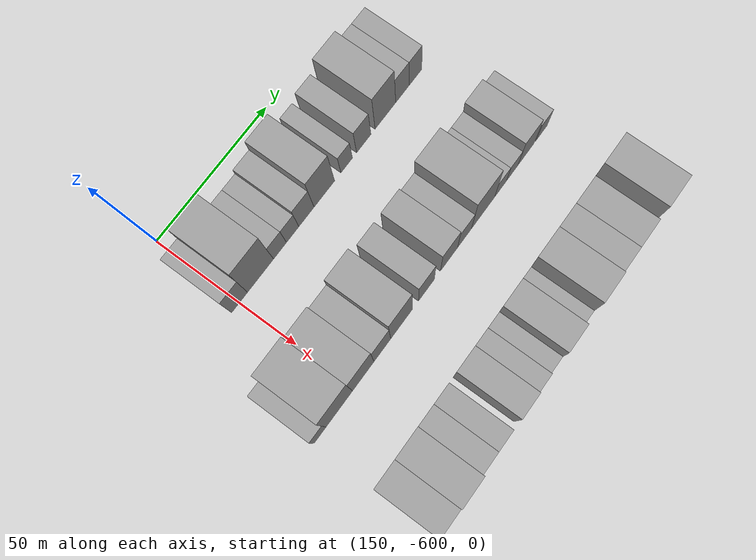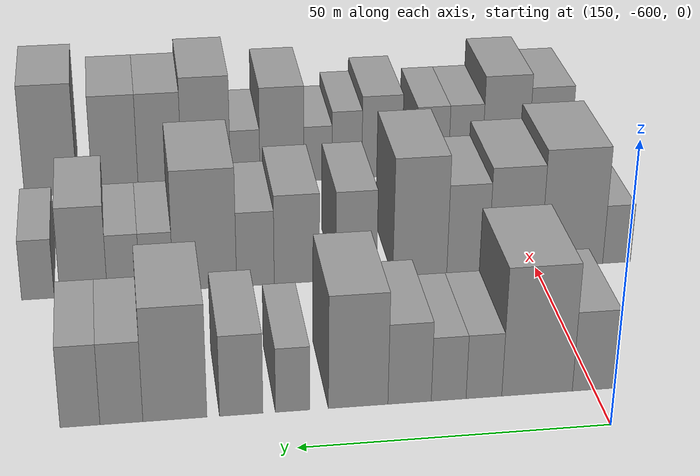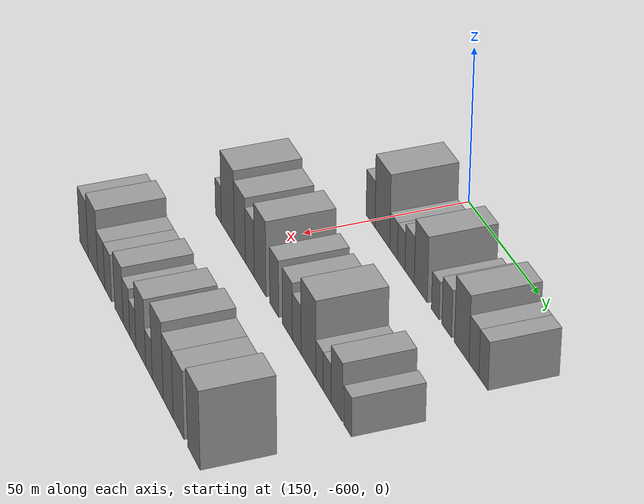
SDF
<sdf version="1.6">
 <world name="default">
  <model name="building_399">
   <static>1</static>
   <pose>170.0000 -599.8929 0 0.000000 0.000000 0.000000</pose>
   <link name="link">
    <pose>0 0 7.50 0 0 0</pose>
    <collision name="collision"><geometry><box><size>20.0000 7.1017 15.0000</size></box></geometry></collision>
    <visual name="visual">
     <cast_shadows>0</cast_shadows>
     <geometry><box><size>20.0000 7.1017 15.0000</size></box></geometry>
     <material>
      <script>
       <uri>model://grey_wall/materials/scripts</uri>
       <uri>model://grey_wall/materials/textures</uri>
       <name>vrc/grey_wall</name>
      </script>
     </material>
    </visual>
   </link>
  </model>
  <model name="building_400">
   <static>1</static>
   <pose>170.0000 -590.4736 0 0.000000 0.000000 0.000000</pose>
   <link name="link">
    <pose>0 0 12.00 0 0 0</pose>
    <collision name="collision"><geometry><box><size>20.0000 11.7370 24.0000</size></box></geometry></collision>
    <visual name="visual">
     <cast_shadows>0</cast_shadows>
     <geometry><box><size>20.0000 11.7370 24.0000</size></box></geometry>
     <material>
      <script>
       <uri>model://grey_wall/materials/scripts</uri>
       <uri>model://grey_wall/materials/textures</uri>
       <name>vrc/grey_wall</name>
      </script>
     </material>
    </visual>
   </link>
  </model>
  <model name="building_401">
   <static>1</static>
   <pose>170.0000 -581.6552 0 0.000000 0.000000 0.000000</pose>
   <link name="link">
    <pose>0 0 6.00 0 0 0</pose>
    <collision name="collision"><geometry><box><size>20.0000 5.8998 12.0000</size></box></geometry></collision>
    <visual name="visual">
     <cast_shadows>0</cast_shadows>
     <geometry><box><size>20.0000 5.8998 12.0000</size></box></geometry>
     <material>
      <script>
       <uri>model://grey_wall/materials/scripts</uri>
       <uri>model://grey_wall/materials/textures</uri>
       <name>vrc/grey_wall</name>
      </script>
     </material>
    </visual>
   </link>
  </model>
  <model name="building_402">
   <static>1</static>
   <pose>170.0000 -575.8412 0 0.000000 0.000000 0.000000</pose>
   <link name="link">
    <pose>0 0 6.00 0 0 0</pose>
    <collision name="collision"><geometry><box><size>20.0000 5.7282 12.0000</size></box></geometry></collision>
    <visual name="visual">
     <cast_shadows>0</cast_shadows>
     <geometry><box><size>20.0000 5.7282 12.0000</size></box></geometry>
     <material>
      <script>
       <uri>model://grey_wall/materials/scripts</uri>
       <uri>model://grey_wall/materials/textures</uri>
       <name>vrc/grey_wall</name>
      </script>
     </material>
    </visual>
   </link>
  </model>
  <model name="building_403">
   <static>1</static>
   <pose>170.0000 -569.4289 0 0.000000 0.000000 0.000000</pose>
   <link name="link">
    <pose>0 0 7.50 0 0 0</pose>
    <collision name="collision"><geometry><box><size>20.0000 7.0965 15.0000</size></box></geometry></collision>
    <visual name="visual">
     <cast_shadows>0</cast_shadows>
     <geometry><box><size>20.0000 7.0965 15.0000</size></box></geometry>
     <material>
      <script>
       <uri>model://grey_wall/materials/scripts</uri>
       <uri>model://grey_wall/materials/textures</uri>
       <name>vrc/grey_wall</name>
      </script>
     </material>
    </visual>
   </link>
  </model>
  <model name="building_404">
   <static>1</static>
   <pose>170.0000 -561.0374 0 0.000000 0.000000 0.000000</pose>
   <link name="link">
    <pose>0 0 10.50 0 0 0</pose>
    <collision name="collision"><geometry><box><size>20.0000 9.6865 21.0000</size></box></geometry></collision>
    <visual name="visual">
     <cast_shadows>0</cast_shadows>
     <geometry><box><size>20.0000 9.6865 21.0000</size></box></geometry>
     <material>
      <script>
       <uri>model://grey_wall/materials/scripts</uri>
       <uri>model://grey_wall/materials/textures</uri>
       <name>vrc/grey_wall</name>
      </script>
     </material>
    </visual>
   </link>
  </model>
  <model name="building_405">
   <static>1</static>
   <pose>170.0000 -550.4196 0 0.000000 0.000000 0.000000</pose>
   <link name="link">
    <pose>0 0 6.00 0 0 0</pose>
    <collision name="collision"><geometry><box><size>20.0000 5.5492 12.0000</size></box></geometry></collision>
    <visual name="visual">
     <cast_shadows>0</cast_shadows>
     <geometry><box><size>20.0000 5.5492 12.0000</size></box></geometry>
     <material>
      <script>
       <uri>model://grey_wall/materials/scripts</uri>
       <uri>model://grey_wall/materials/textures</uri>
       <name>vrc/grey_wall</name>
      </script>
     </material>
    </visual>
   </link>
  </model>
  <model name="building_406">
   <static>1</static>
   <pose>170.0000 -542.1634 0 0.000000 0.000000 0.000000</pose>
   <link name="link">
    <pose>0 0 7.50 0 0 0</pose>
    <collision name="collision"><geometry><box><size>20.0000 6.9631 15.0000</size></box></geometry></collision>
    <visual name="visual">
     <cast_shadows>0</cast_shadows>
     <geometry><box><size>20.0000 6.9631 15.0000</size></box></geometry>
     <material>
      <script>
       <uri>model://grey_wall/materials/scripts</uri>
       <uri>model://grey_wall/materials/textures</uri>
       <name>vrc/grey_wall</name>
      </script>
     </material>
    </visual>
   </link>
  </model>
  <model name="building_407">
   <static>1</static>
   <pose>170.0000 -531.5917 0 0.000000 0.000000 0.000000</pose>
   <link name="link">
    <pose>0 0 10.50 0 0 0</pose>
    <collision name="collision"><geometry><box><size>20.0000 10.1802 21.0000</size></box></geometry></collision>
    <visual name="visual">
     <cast_shadows>0</cast_shadows>
     <geometry><box><size>20.0000 10.1802 21.0000</size></box></geometry>
     <material>
      <script>
       <uri>model://grey_wall/materials/scripts</uri>
       <uri>model://grey_wall/materials/textures</uri>
       <name>vrc/grey_wall</name>
      </script>
     </material>
    </visual>
   </link>
  </model>
  <model name="building_408">
   <static>1</static>
   <pose>170.0000 -523.1170 0 0.000000 0.000000 0.000000</pose>
   <link name="link">
    <pose>0 0 7.50 0 0 0</pose>
    <collision name="collision"><geometry><box><size>20.0000 6.7692 15.0000</size></box></geometry></collision>
    <visual name="visual">
     <cast_shadows>0</cast_shadows>
     <geometry><box><size>20.0000 6.7692 15.0000</size></box></geometry>
     <material>
      <script>
       <uri>model://grey_wall/materials/scripts</uri>
       <uri>model://grey_wall/materials/textures</uri>
       <name>vrc/grey_wall</name>
      </script>
     </material>
    </visual>
   </link>
  </model>
  <model name="building_409">
   <static>1</static>
   <pose>170.0000 -516.5930 0 0.000000 0.000000 0.000000</pose>
   <link name="link">
    <pose>0 0 7.50 0 0 0</pose>
    <collision name="collision"><geometry><box><size>20.0000 6.2789 15.0000</size></box></geometry></collision>
    <visual name="visual">
     <cast_shadows>0</cast_shadows>
     <geometry><box><size>20.0000 6.2789 15.0000</size></box></geometry>
     <material>
      <script>
       <uri>model://grey_wall/materials/scripts</uri>
       <uri>model://grey_wall/materials/textures</uri>
       <name>vrc/grey_wall</name>
      </script>
     </material>
    </visual>
   </link>
  </model>
  <model name="building_540">
   <static>1</static>
   <pose>210.0000 -615.3526 0 0.000000 0.000000 0.000000</pose>
   <link name="link">
    <pose>0 0 6.00 0 0 0</pose>
    <collision name="collision"><geometry><box><size>20.0000 5.2949 12.0000</size></box></geometry></collision>
    <visual name="visual">
     <cast_shadows>0</cast_shadows>
     <geometry><box><size>20.0000 5.2949 12.0000</size></box></geometry>
     <material>
      <script>
       <uri>model://grey_wall/materials/scripts</uri>
       <uri>model://grey_wall/materials/textures</uri>
       <name>vrc/grey_wall</name>
      </script>
     </material>
    </visual>
   </link>
  </model>
  <model name="building_541">
   <static>1</static>
   <pose>210.0000 -606.7987 0 0.000000 0.000000 0.000000</pose>
   <link name="link">
    <pose>0 0 12.00 0 0 0</pose>
    <collision name="collision"><geometry><box><size>20.0000 11.8129 24.0000</size></box></geometry></collision>
    <visual name="visual">
     <cast_shadows>0</cast_shadows>
     <geometry><box><size>20.0000 11.8129 24.0000</size></box></geometry>
     <material>
      <script>
       <uri>model://grey_wall/materials/scripts</uri>
       <uri>model://grey_wall/materials/textures</uri>
       <name>vrc/grey_wall</name>
      </script>
     </material>
    </visual>
   </link>
  </model>
  <model name="building_542">
   <static>1</static>
   <pose>210.0000 -595.9893 0 0.000000 0.000000 0.000000</pose>
   <link name="link">
    <pose>0 0 10.50 0 0 0</pose>
    <collision name="collision"><geometry><box><size>20.0000 9.8058 21.0000</size></box></geometry></collision>
    <visual name="visual">
     <cast_shadows>0</cast_shadows>
     <geometry><box><size>20.0000 9.8058 21.0000</size></box></geometry>
     <material>
      <script>
       <uri>model://grey_wall/materials/scripts</uri>
       <uri>model://grey_wall/materials/textures</uri>
       <name>vrc/grey_wall</name>
      </script>
     </material>
    </visual>
   </link>
  </model>
  <model name="building_543">
   <static>1</static>
   <pose>210.0000 -587.2452 0 0.000000 0.000000 0.000000</pose>
   <link name="link">
    <pose>0 0 9.00 0 0 0</pose>
    <collision name="collision"><geometry><box><size>20.0000 7.6826 18.0000</size></box></geometry></collision>
    <visual name="visual">
     <cast_shadows>0</cast_shadows>
     <geometry><box><size>20.0000 7.6826 18.0000</size></box></geometry>
     <material>
      <script>
       <uri>model://grey_wall/materials/scripts</uri>
       <uri>model://grey_wall/materials/textures</uri>
       <name>vrc/grey_wall</name>
      </script>
     </material>
    </visual>
   </link>
  </model>
  <model name="building_544">
   <static>1</static>
   <pose>210.0000 -578.3949 0 0.000000 0.000000 0.000000</pose>
   <link name="link">
    <pose>0 0 12.00 0 0 0</pose>
    <collision name="collision"><geometry><box><size>20.0000 10.0179 24.0000</size></box></geometry></collision>
    <visual name="visual">
     <cast_shadows>0</cast_shadows>
     <geometry><box><size>20.0000 10.0179 24.0000</size></box></geometry>
     <material>
      <script>
       <uri>model://grey_wall/materials/scripts</uri>
       <uri>model://grey_wall/materials/textures</uri>
       <name>vrc/grey_wall</name>
      </script>
     </material>
    </visual>
   </link>
  </model>
  <model name="building_545">
   <static>1</static>
   <pose>210.0000 -566.6279 0 0.000000 0.000000 0.000000</pose>
   <link name="link">
    <pose>0 0 9.00 0 0 0</pose>
    <collision name="collision"><geometry><box><size>20.0000 7.5161 18.0000</size></box></geometry></collision>
    <visual name="visual">
     <cast_shadows>0</cast_shadows>
     <geometry><box><size>20.0000 7.5161 18.0000</size></box></geometry>
     <material>
      <script>
       <uri>model://grey_wall/materials/scripts</uri>
       <uri>model://grey_wall/materials/textures</uri>
       <name>vrc/grey_wall</name>
      </script>
     </material>
    </visual>
   </link>
  </model>
  <model name="building_546">
   <static>1</static>
   <pose>210.0000 -555.7561 0 0.000000 0.000000 0.000000</pose>
   <link name="link">
    <pose>0 0 9.00 0 0 0</pose>
    <collision name="collision"><geometry><box><size>20.0000 8.2277 18.0000</size></box></geometry></collision>
    <visual name="visual">
     <cast_shadows>0</cast_shadows>
     <geometry><box><size>20.0000 8.2277 18.0000</size></box></geometry>
     <material>
      <script>
       <uri>model://grey_wall/materials/scripts</uri>
       <uri>model://grey_wall/materials/textures</uri>
       <name>vrc/grey_wall</name>
      </script>
     </material>
    </visual>
   </link>
  </model>
  <model name="building_547">
   <static>1</static>
   <pose>210.0000 -548.2301 0 0.000000 0.000000 0.000000</pose>
   <link name="link">
    <pose>0 0 7.50 0 0 0</pose>
    <collision name="collision"><geometry><box><size>20.0000 6.8242 15.0000</size></box></geometry></collision>
    <visual name="visual">
     <cast_shadows>0</cast_shadows>
     <geometry><box><size>20.0000 6.8242 15.0000</size></box></geometry>
     <material>
      <script>
       <uri>model://grey_wall/materials/scripts</uri>
       <uri>model://grey_wall/materials/textures</uri>
       <name>vrc/grey_wall</name>
      </script>
     </material>
    </visual>
   </link>
  </model>
  <model name="building_548">
   <static>1</static>
   <pose>210.0000 -539.0974 0 0.000000 0.000000 0.000000</pose>
   <link name="link">
    <pose>0 0 12.00 0 0 0</pose>
    <collision name="collision"><geometry><box><size>20.0000 11.4411 24.0000</size></box></geometry></collision>
    <visual name="visual">
     <cast_shadows>0</cast_shadows>
     <geometry><box><size>20.0000 11.4411 24.0000</size></box></geometry>
     <material>
      <script>
       <uri>model://grey_wall/materials/scripts</uri>
       <uri>model://grey_wall/materials/textures</uri>
       <name>vrc/grey_wall</name>
      </script>
     </material>
    </visual>
   </link>
  </model>
  <model name="building_549">
   <static>1</static>
   <pose>210.0000 -530.3914 0 0.000000 0.000000 0.000000</pose>
   <link name="link">
    <pose>0 0 6.00 0 0 0</pose>
    <collision name="collision"><geometry><box><size>20.0000 5.9710 12.0000</size></box></geometry></collision>
    <visual name="visual">
     <cast_shadows>0</cast_shadows>
     <geometry><box><size>20.0000 5.9710 12.0000</size></box></geometry>
     <material>
      <script>
       <uri>model://grey_wall/materials/scripts</uri>
       <uri>model://grey_wall/materials/textures</uri>
       <name>vrc/grey_wall</name>
      </script>
     </material>
    </visual>
   </link>
  </model>
  <model name="building_550">
   <static>1</static>
   <pose>210.0000 -524.4994 0 0.000000 0.000000 0.000000</pose>
   <link name="link">
    <pose>0 0 6.00 0 0 0</pose>
    <collision name="collision"><geometry><box><size>20.0000 5.8131 12.0000</size></box></geometry></collision>
    <visual name="visual">
     <cast_shadows>0</cast_shadows>
     <geometry><box><size>20.0000 5.8131 12.0000</size></box></geometry>
     <material>
      <script>
       <uri>model://grey_wall/materials/scripts</uri>
       <uri>model://grey_wall/materials/textures</uri>
       <name>vrc/grey_wall</name>
      </script>
     </material>
    </visual>
   </link>
  </model>
  <model name="building_551">
   <static>1</static>
   <pose>210.0000 -517.3816 0 0.000000 0.000000 0.000000</pose>
   <link name="link">
    <pose>0 0 9.00 0 0 0</pose>
    <collision name="collision"><geometry><box><size>20.0000 8.4225 18.0000</size></box></geometry></collision>
    <visual name="visual">
     <cast_shadows>0</cast_shadows>
     <geometry><box><size>20.0000 8.4225 18.0000</size></box></geometry>
     <material>
      <script>
       <uri>model://grey_wall/materials/scripts</uri>
       <uri>model://grey_wall/materials/textures</uri>
       <name>vrc/grey_wall</name>
      </script>
     </material>
    </visual>
   </link>
  </model>
  <model name="building_552">
   <static>1</static>
   <pose>210.0000 -509.2824 0 0.000000 0.000000 0.000000</pose>
   <link name="link">
    <pose>0 0 6.00 0 0 0</pose>
    <collision name="collision"><geometry><box><size>20.0000 5.7760 12.0000</size></box></geometry></collision>
    <visual name="visual">
     <cast_shadows>0</cast_shadows>
     <geometry><box><size>20.0000 5.7760 12.0000</size></box></geometry>
     <material>
      <script>
       <uri>model://grey_wall/materials/scripts</uri>
       <uri>model://grey_wall/materials/textures</uri>
       <name>vrc/grey_wall</name>
      </script>
     </material>
    </visual>
   </link>
  </model>
  <model name="building_678">
   <static>1</static>
   <pose>250.0000 -612.5660 0 0.000000 0.000000 0.000000</pose>
   <link name="link">
    <pose>0 0 9.00 0 0 0</pose>
    <collision name="collision"><geometry><box><size>20.0000 8.8681 18.0000</size></box></geometry></collision>
    <visual name="visual">
     <cast_shadows>0</cast_shadows>
     <geometry><box><size>20.0000 8.8681 18.0000</size></box></geometry>
     <material>
      <script>
       <uri>model://grey_wall/materials/scripts</uri>
       <uri>model://grey_wall/materials/textures</uri>
       <name>vrc/grey_wall</name>
      </script>
     </material>
    </visual>
   </link>
  </model>
  <model name="building_679">
   <static>1</static>
   <pose>250.0000 -603.3233 0 0.000000 0.000000 0.000000</pose>
   <link name="link">
    <pose>0 0 10.50 0 0 0</pose>
    <collision name="collision"><geometry><box><size>20.0000 9.6173 21.0000</size></box></geometry></collision>
    <visual name="visual">
     <cast_shadows>0</cast_shadows>
     <geometry><box><size>20.0000 9.6173 21.0000</size></box></geometry>
     <material>
      <script>
       <uri>model://grey_wall/materials/scripts</uri>
       <uri>model://grey_wall/materials/textures</uri>
       <name>vrc/grey_wall</name>
      </script>
     </material>
    </visual>
   </link>
  </model>
  <model name="building_680">
   <static>1</static>
   <pose>250.0000 -595.0401 0 0.000000 0.000000 0.000000</pose>
   <link name="link">
    <pose>0 0 7.50 0 0 0</pose>
    <collision name="collision"><geometry><box><size>20.0000 6.9489 15.0000</size></box></geometry></collision>
    <visual name="visual">
     <cast_shadows>0</cast_shadows>
     <geometry><box><size>20.0000 6.9489 15.0000</size></box></geometry>
     <material>
      <script>
       <uri>model://grey_wall/materials/scripts</uri>
       <uri>model://grey_wall/materials/textures</uri>
       <name>vrc/grey_wall</name>
      </script>
     </material>
    </visual>
   </link>
  </model>
  <model name="building_681">
   <static>1</static>
   <pose>250.0000 -588.2396 0 0.000000 0.000000 0.000000</pose>
   <link name="link">
    <pose>0 0 7.50 0 0 0</pose>
    <collision name="collision"><geometry><box><size>20.0000 6.6521 15.0000</size></box></geometry></collision>
    <visual name="visual">
     <cast_shadows>0</cast_shadows>
     <geometry><box><size>20.0000 6.6521 15.0000</size></box></geometry>
     <material>
      <script>
       <uri>model://grey_wall/materials/scripts</uri>
       <uri>model://grey_wall/materials/textures</uri>
       <name>vrc/grey_wall</name>
      </script>
     </material>
    </visual>
   </link>
  </model>
  <model name="building_682">
   <static>1</static>
   <pose>250.0000 -577.7964 0 0.000000 0.000000 0.000000</pose>
   <link name="link">
    <pose>0 0 9.00 0 0 0</pose>
    <collision name="collision"><geometry><box><size>20.0000 8.2343 18.0000</size></box></geometry></collision>
    <visual name="visual">
     <cast_shadows>0</cast_shadows>
     <geometry><box><size>20.0000 8.2343 18.0000</size></box></geometry>
     <material>
      <script>
       <uri>model://grey_wall/materials/scripts</uri>
       <uri>model://grey_wall/materials/textures</uri>
       <name>vrc/grey_wall</name>
      </script>
     </material>
    </visual>
   </link>
  </model>
  <model name="building_683">
   <static>1</static>
   <pose>250.0000 -570.6433 0 0.000000 0.000000 0.000000</pose>
   <link name="link">
    <pose>0 0 7.50 0 0 0</pose>
    <collision name="collision"><geometry><box><size>20.0000 6.0718 15.0000</size></box></geometry></collision>
    <visual name="visual">
     <cast_shadows>0</cast_shadows>
     <geometry><box><size>20.0000 6.0718 15.0000</size></box></geometry>
     <material>
      <script>
       <uri>model://grey_wall/materials/scripts</uri>
       <uri>model://grey_wall/materials/textures</uri>
       <name>vrc/grey_wall</name>
      </script>
     </material>
    </visual>
   </link>
  </model>
  <model name="building_684">
   <static>1</static>
   <pose>250.0000 -564.7393 0 0.000000 0.000000 0.000000</pose>
   <link name="link">
    <pose>0 0 6.00 0 0 0</pose>
    <collision name="collision"><geometry><box><size>20.0000 5.7362 12.0000</size></box></geometry></collision>
    <visual name="visual">
     <cast_shadows>0</cast_shadows>
     <geometry><box><size>20.0000 5.7362 12.0000</size></box></geometry>
     <material>
      <script>
       <uri>model://grey_wall/materials/scripts</uri>
       <uri>model://grey_wall/materials/textures</uri>
       <name>vrc/grey_wall</name>
      </script>
     </material>
    </visual>
   </link>
  </model>
  <model name="building_685">
   <static>1</static>
   <pose>250.0000 -557.4053 0 0.000000 0.000000 0.000000</pose>
   <link name="link">
    <pose>0 0 10.50 0 0 0</pose>
    <collision name="collision"><geometry><box><size>20.0000 8.9320 21.0000</size></box></geometry></collision>
    <visual name="visual">
     <cast_shadows>0</cast_shadows>
     <geometry><box><size>20.0000 8.9320 21.0000</size></box></geometry>
     <material>
      <script>
       <uri>model://grey_wall/materials/scripts</uri>
       <uri>model://grey_wall/materials/textures</uri>
       <name>vrc/grey_wall</name>
      </script>
     </material>
    </visual>
   </link>
  </model>
  <model name="building_686">
   <static>1</static>
   <pose>250.0000 -549.9623 0 0.000000 0.000000 0.000000</pose>
   <link name="link">
    <pose>0 0 6.00 0 0 0</pose>
    <collision name="collision"><geometry><box><size>20.0000 5.9540 12.0000</size></box></geometry></collision>
    <visual name="visual">
     <cast_shadows>0</cast_shadows>
     <geometry><box><size>20.0000 5.9540 12.0000</size></box></geometry>
     <material>
      <script>
       <uri>model://grey_wall/materials/scripts</uri>
       <uri>model://grey_wall/materials/textures</uri>
       <name>vrc/grey_wall</name>
      </script>
     </material>
    </visual>
   </link>
  </model>
  <model name="building_687">
   <static>1</static>
   <pose>250.0000 -542.1010 0 0.000000 0.000000 0.000000</pose>
   <link name="link">
    <pose>0 0 12.00 0 0 0</pose>
    <collision name="collision"><geometry><box><size>20.0000 9.7687 24.0000</size></box></geometry></collision>
    <visual name="visual">
     <cast_shadows>0</cast_shadows>
     <geometry><box><size>20.0000 9.7687 24.0000</size></box></geometry>
     <material>
      <script>
       <uri>model://grey_wall/materials/scripts</uri>
       <uri>model://grey_wall/materials/textures</uri>
       <name>vrc/grey_wall</name>
      </script>
     </material>
    </visual>
   </link>
  </model>
  <model name="building_688">
   <static>1</static>
   <pose>250.0000 -532.8435 0 0.000000 0.000000 0.000000</pose>
   <link name="link">
    <pose>0 0 10.50 0 0 0</pose>
    <collision name="collision"><geometry><box><size>20.0000 8.7463 21.0000</size></box></geometry></collision>
    <visual name="visual">
     <cast_shadows>0</cast_shadows>
     <geometry><box><size>20.0000 8.7463 21.0000</size></box></geometry>
     <material>
      <script>
       <uri>model://grey_wall/materials/scripts</uri>
       <uri>model://grey_wall/materials/textures</uri>
       <name>vrc/grey_wall</name>
      </script>
     </material>
    </visual>
   </link>
  </model>
  <model name="building_689">
   <static>1</static>
   <pose>250.0000 -523.8982 0 0.000000 0.000000 0.000000</pose>
   <link name="link">
    <pose>0 0 10.50 0 0 0</pose>
    <collision name="collision"><geometry><box><size>20.0000 9.1442 21.0000</size></box></geometry></collision>
    <visual name="visual">
     <cast_shadows>0</cast_shadows>
     <geometry><box><size>20.0000 9.1442 21.0000</size></box></geometry>
     <material>
      <script>
       <uri>model://grey_wall/materials/scripts</uri>
       <uri>model://grey_wall/materials/textures</uri>
       <name>vrc/grey_wall</name>
      </script>
     </material>
    </visual>
   </link>
  </model>
  <model name="building_690">
   <static>1</static>
   <pose>250.0000 -511.1196 0 0.000000 0.000000 0.000000</pose>
   <link name="link">
    <pose>0 0 12.00 0 0 0</pose>
    <collision name="collision"><geometry><box><size>20.0000 10.4130 24.0000</size></box></geometry></collision>
    <visual name="visual">
     <cast_shadows>0</cast_shadows>
     <geometry><box><size>20.0000 10.4130 24.0000</size></box></geometry>
     <material>
      <script>
       <uri>model://grey_wall/materials/scripts</uri>
       <uri>model://grey_wall/materials/textures</uri>
       <name>vrc/grey_wall</name>
      </script>
     </material>
    </visual>
   </link>
  </model>
 </world>
</sdf>
